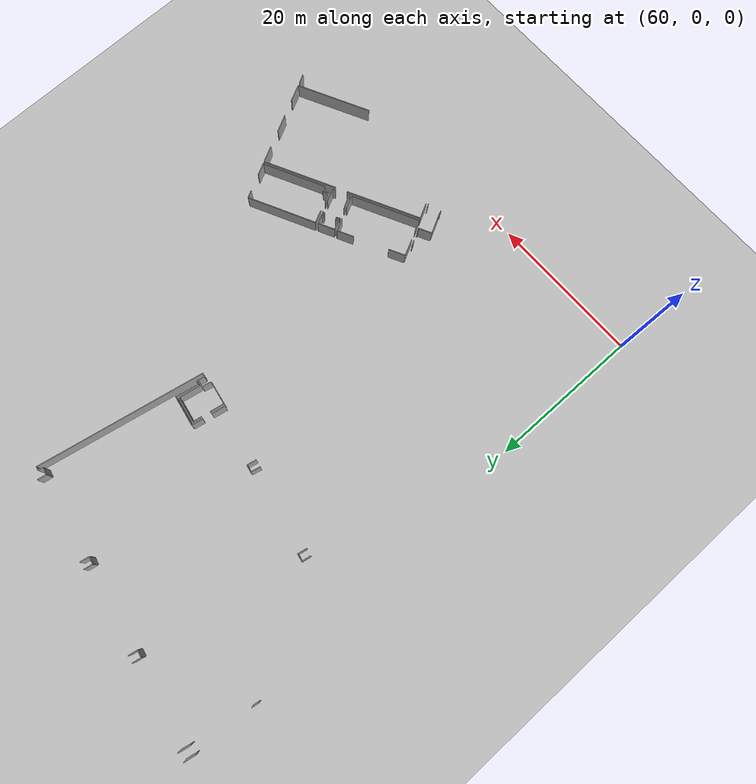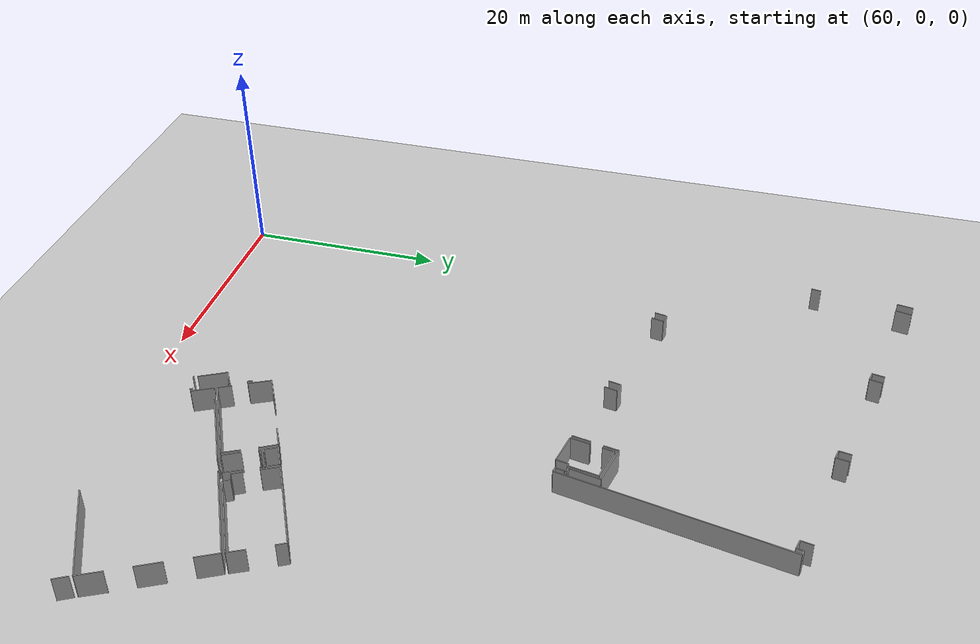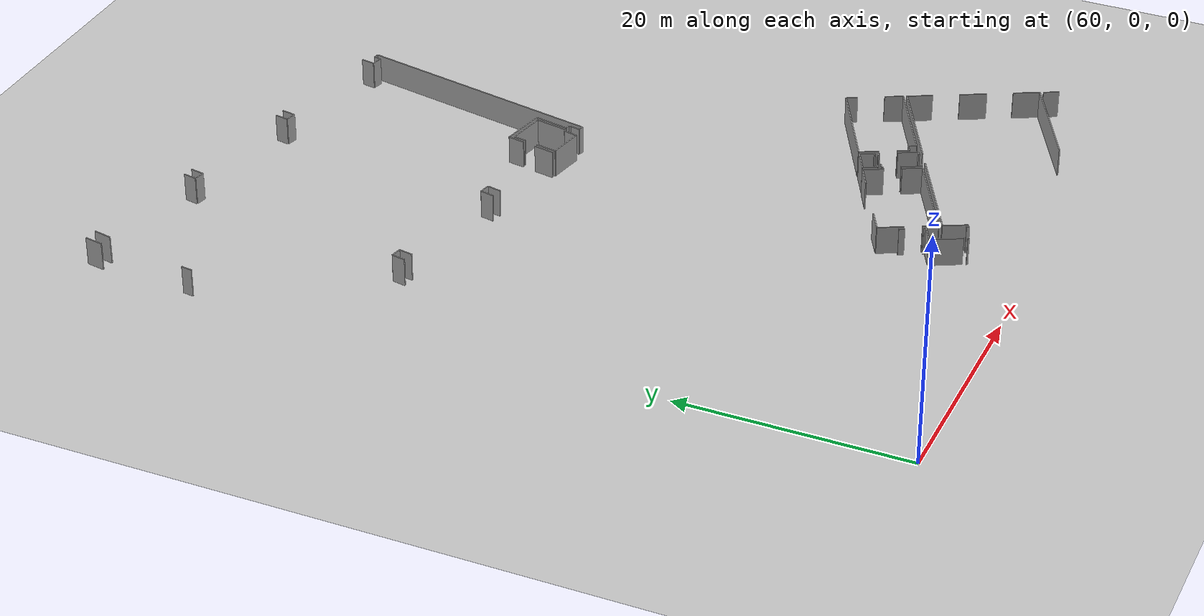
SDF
<sdf version="1.6">
 <world name="default">
  <model name="ground_plane">
   <static>1</static>
   <link name="link">
    <collision name="collision">
     <geometry><plane><normal>0 0 1</normal><size>100 100</size></plane></geometry>
     <surface><friction><ode><mu>100</mu><mu2>50</mu2></ode></friction></surface>
    </collision>
    <visual name="visual">
     <cast_shadows>0</cast_shadows>
     <geometry><plane><normal>0 0 1</normal><size>100 100</size></plane></geometry>
     <material>
      <script><uri>file://media/materials/scripts/gazebo.material</uri><name>Gazebo/Grey</name></script>
     </material>
    </visual>
   </link>
  </model>
  <model name="0510045926_A-40">
   <static>1</static>
   <link name="Wall_0">
    <collision name="Wall_0_Collision">
     <geometry><box><size>2.24683478644 0.1 2.5</size></box></geometry>
     <pose>1.12341739322 0 1.25 0 0 0</pose>
    </collision>
    <visual name="Wall_0_Visual">
     <pose>1.12341739322 0 1.25 0 0 0</pose>
     <geometry><box><size>2.24683478644 0.1 2.5</size></box></geometry>
     <material>
      <script><uri>file://media/materials/scripts/gazebo.material</uri><name>Gazebo/Grey</name></script>
      <ambient>1 1 1 1</ambient>
     </material>
    </visual>
    <pose>228.549551665 -84.0987162321 0 0 0 0.472186205042</pose>
   </link>
   <link name="Wall_1">
    <collision name="Wall_1_Collision">
     <geometry><box><size>1.26755915564 0.1 2.5</size></box></geometry>
     <pose>0.633779577821 0 1.25 0 0 0</pose>
    </collision>
    <visual name="Wall_1_Visual">
     <pose>0.633779577821 0 1.25 0 0 0</pose>
     <geometry><box><size>1.26755915564 0.1 2.5</size></box></geometry>
     <material>
      <script><uri>file://media/materials/scripts/gazebo.material</uri><name>Gazebo/Grey</name></script>
      <ambient>1 1 1 1</ambient>
     </material>
    </visual>
    <pose>230.550528928 -83.0767785865 0 0 0 -1.08762414792</pose>
   </link>
   <link name="Wall_2">
    <collision name="Wall_2_Collision">
     <geometry><box><size>0.303872854573 0.1 2.5</size></box></geometry>
     <pose>0.151936427287 0 1.25 0 0 0</pose>
    </collision>
    <visual name="Wall_2_Visual">
     <pose>0.151936427287 0 1.25 0 0 0</pose>
     <geometry><box><size>0.303872854573 0.1 2.5</size></box></geometry>
     <material>
      <script><uri>file://media/materials/scripts/gazebo.material</uri><name>Gazebo/Grey</name></script>
      <ambient>1 1 1 1</ambient>
     </material>
    </visual>
    <pose>231.139424938 -84.199234689 0 0 0 -2.5656376599</pose>
   </link>
   <link name="Wall_3">
    <collision name="Wall_3_Collision">
     <geometry><box><size>0.41561760121 0.1 2.5</size></box></geometry>
     <pose>0.207808800605 0 1.25 0 0 0</pose>
    </collision>
    <visual name="Wall_3_Visual">
     <pose>0.207808800605 0 1.25 0 0 0</pose>
     <geometry><box><size>0.41561760121 0.1 2.5</size></box></geometry>
     <material>
      <script><uri>file://media/materials/scripts/gazebo.material</uri><name>Gazebo/Grey</name></script>
      <ambient>1 1 1 1</ambient>
     </material>
    </visual>
    <pose>229.499400316 -85.0498340557 0 0 0 -2.66647327252</pose>
   </link>
   <link name="Wall_4">
    <collision name="Wall_4_Collision">
     <geometry><box><size>1.2802877083 0.1 2.5</size></box></geometry>
     <pose>0.640143854149 0 1.25 0 0 0</pose>
    </collision>
    <visual name="Wall_4_Visual">
     <pose>0.640143854149 0 1.25 0 0 0</pose>
     <geometry><box><size>1.2802877083 0.1 2.5</size></box></geometry>
     <material>
      <script><uri>file://media/materials/scripts/gazebo.material</uri><name>Gazebo/Grey</name></script>
      <ambient>1 1 1 1</ambient>
     </material>
    </visual>
    <pose>229.129817303 -85.2399560866 0 0 0 2.04118261727</pose>
   </link>
   <link name="Wall_5">
    <collision name="Wall_5_Collision">
     <geometry><box><size>9.20374841256 0.1 2.5</size></box></geometry>
     <pose>4.60187420628 0 1.25 0 0 0</pose>
    </collision>
    <visual name="Wall_5_Visual">
     <pose>4.60187420628 0 1.25 0 0 0</pose>
     <geometry><box><size>9.20374841256 0.1 2.5</size></box></geometry>
     <material>
      <script><uri>file://media/materials/scripts/gazebo.material</uri><name>Gazebo/Grey</name></script>
      <ambient>1 1 1 1</ambient>
     </material>
    </visual>
    <pose>230.850561292 -82.9031557973 0 0 0 0.466225399707</pose>
   </link>
   <link name="Wall_6">
    <collision name="Wall_6_Collision">
     <geometry><box><size>1.00990088383 0.1 2.5</size></box></geometry>
     <pose>0.504950441916 0 1.25 0 0 0</pose>
    </collision>
    <visual name="Wall_6_Visual">
     <pose>0.504950441916 0 1.25 0 0 0</pose>
     <geometry><box><size>1.00990088383 0.1 2.5</size></box></geometry>
     <material>
      <script><uri>file://media/materials/scripts/gazebo.material</uri><name>Gazebo/Grey</name></script>
      <ambient>1 1 1 1</ambient>
     </material>
    </visual>
    <pose>239.072006498 -78.76590749 0 0 0 -1.07578249008</pose>
   </link>
   <link name="Wall_7">
    <collision name="Wall_7_Collision">
     <geometry><box><size>1.66262526959 0.1 2.5</size></box></geometry>
     <pose>0.831312634797 0 1.25 0 0 0</pose>
    </collision>
    <visual name="Wall_7_Visual">
     <pose>0.831312634797 0 1.25 0 0 0</pose>
     <geometry><box><size>1.66262526959 0.1 2.5</size></box></geometry>
     <material>
      <script><uri>file://media/materials/scripts/gazebo.material</uri><name>Gazebo/Grey</name></script>
      <ambient>1 1 1 1</ambient>
     </material>
    </visual>
    <pose>240.63055025 -81.7530317357 0 0 0 -1.11383986469</pose>
   </link>
   <link name="Wall_8">
    <collision name="Wall_8_Collision">
     <geometry><box><size>8.47727137903 0.1 2.5</size></box></geometry>
     <pose>4.23863568951 0 1.25 0 0 0</pose>
    </collision>
    <visual name="Wall_8_Visual">
     <pose>4.23863568951 0 1.25 0 0 0</pose>
     <geometry><box><size>8.47727137903 0.1 2.5</size></box></geometry>
     <material>
      <script><uri>file://media/materials/scripts/gazebo.material</uri><name>Gazebo/Grey</name></script>
      <ambient>1 1 1 1</ambient>
     </material>
    </visual>
    <pose>241.364131918 -83.2450708516 0 0 0 -2.67387420188</pose>
   </link>
   <link name="Wall_9">
    <collision name="Wall_9_Collision">
     <geometry><box><size>0.711284816569 0.1 2.5</size></box></geometry>
     <pose>0.355642408284 0 1.25 0 0 0</pose>
    </collision>
    <visual name="Wall_9_Visual">
     <pose>0.355642408284 0 1.25 0 0 0</pose>
     <geometry><box><size>0.711284816569 0.1 2.5</size></box></geometry>
     <material>
      <script><uri>file://media/materials/scripts/gazebo.material</uri><name>Gazebo/Grey</name></script>
      <ambient>1 1 1 1</ambient>
     </material>
    </visual>
    <pose>233.797325854 -87.0670567257 0 0 0 2.07754821075</pose>
   </link>
   <link name="Wall_10">
    <collision name="Wall_10_Collision">
     <geometry><box><size>0.712422382929 0.1 2.5</size></box></geometry>
     <pose>0.356211191465 0 1.25 0 0 0</pose>
    </collision>
    <visual name="Wall_10_Visual">
     <pose>0.356211191465 0 1.25 0 0 0</pose>
     <geometry><box><size>0.712422382929 0.1 2.5</size></box></geometry>
     <material>
      <script><uri>file://media/materials/scripts/gazebo.material</uri><name>Gazebo/Grey</name></script>
      <ambient>1 1 1 1</ambient>
     </material>
    </visual>
    <pose>233.452110951 -86.445162232 0 0 0 -2.70216727472</pose>
   </link>
   <link name="Wall_11">
    <collision name="Wall_11_Collision">
     <geometry><box><size>1.04683681426 0.1 2.5</size></box></geometry>
     <pose>0.523418407128 0 1.25 0 0 0</pose>
    </collision>
    <visual name="Wall_11_Visual">
     <pose>0.523418407128 0 1.25 0 0 0</pose>
     <geometry><box><size>1.04683681426 0.1 2.5</size></box></geometry>
     <material>
      <script><uri>file://media/materials/scripts/gazebo.material</uri><name>Gazebo/Grey</name></script>
      <ambient>1 1 1 1</ambient>
     </material>
    </visual>
    <pose>232.807371354 -86.7482406097 0 0 0 2.07544547198</pose>
   </link>
   <link name="Wall_12">
    <collision name="Wall_12_Collision">
     <geometry><box><size>1.74859254883 0.1 2.5</size></box></geometry>
     <pose>0.874296274414 0 1.25 0 0 0</pose>
    </collision>
    <visual name="Wall_12_Visual">
     <pose>0.874296274414 0 1.25 0 0 0</pose>
     <geometry><box><size>1.74859254883 0.1 2.5</size></box></geometry>
     <material>
      <script><uri>file://media/materials/scripts/gazebo.material</uri><name>Gazebo/Grey</name></script>
      <ambient>1 1 1 1</ambient>
     </material>
    </visual>
    <pose>231.618410615 -84.4741374387 0 0 0 2.02541996469</pose>
   </link>
   <link name="Wall_13">
    <collision name="Wall_13_Collision">
     <geometry><box><size>2.20443619592 0.1 2.5</size></box></geometry>
     <pose>1.10221809796 0 1.25 0 0 0</pose>
    </collision>
    <visual name="Wall_13_Visual">
     <pose>1.10221809796 0 1.25 0 0 0</pose>
     <geometry><box><size>2.20443619592 0.1 2.5</size></box></geometry>
     <material>
      <script><uri>file://media/materials/scripts/gazebo.material</uri><name>Gazebo/Grey</name></script>
      <ambient>1 1 1 1</ambient>
     </material>
    </visual>
    <pose>220.097878578 -88.3831885419 0 0 0 0.478787823014</pose>
   </link>
   <link name="Wall_14">
    <collision name="Wall_14_Collision">
     <geometry><box><size>2.22803820862 0.1 2.5</size></box></geometry>
     <pose>1.11401910431 0 1.25 0 0 0</pose>
    </collision>
    <visual name="Wall_14_Visual">
     <pose>1.11401910431 0 1.25 0 0 0</pose>
     <geometry><box><size>2.22803820862 0.1 2.5</size></box></geometry>
     <material>
      <script><uri>file://media/materials/scripts/gazebo.material</uri><name>Gazebo/Grey</name></script>
      <ambient>1 1 1 1</ambient>
     </material>
    </visual>
    <pose>226.234073472 -85.2206646656 0 0 0 0.467417907536</pose>
   </link>
   <link name="Wall_15">
    <collision name="Wall_15_Collision">
     <geometry><box><size>1.78536736294 0.1 2.5</size></box></geometry>
     <pose>0.89268368147 0 1.25 0 0 0</pose>
    </collision>
    <visual name="Wall_15_Visual">
     <pose>0.89268368147 0 1.25 0 0 0</pose>
     <geometry><box><size>1.78536736294 0.1 2.5</size></box></geometry>
     <material>
      <script><uri>file://media/materials/scripts/gazebo.material</uri><name>Gazebo/Grey</name></script>
      <ambient>1 1 1 1</ambient>
     </material>
    </visual>
    <pose>228.223120514 -84.2167492686 0 0 0 -1.08050447128</pose>
   </link>
   <link name="Wall_16">
    <collision name="Wall_16_Collision">
     <geometry><box><size>1.73853767877 0.1 2.5</size></box></geometry>
     <pose>0.869268839387 0 1.25 0 0 0</pose>
    </collision>
    <visual name="Wall_16_Visual">
     <pose>0.869268839387 0 1.25 0 0 0</pose>
     <geometry><box><size>1.73853767877 0.1 2.5</size></box></geometry>
     <material>
      <script><uri>file://media/materials/scripts/gazebo.material</uri><name>Gazebo/Grey</name></script>
      <ambient>1 1 1 1</ambient>
     </material>
    </visual>
    <pose>229.759072996 -87.1817899139 0 0 0 -1.10976053033</pose>
   </link>
   <link name="Wall_17">
    <collision name="Wall_17_Collision">
     <geometry><box><size>9.12243061222 0.1 2.5</size></box></geometry>
     <pose>4.56121530611 0 1.25 0 0 0</pose>
    </collision>
    <visual name="Wall_17_Visual">
     <pose>4.56121530611 0 1.25 0 0 0</pose>
     <geometry><box><size>9.12243061222 0.1 2.5</size></box></geometry>
     <material>
      <script><uri>file://media/materials/scripts/gazebo.material</uri><name>Gazebo/Grey</name></script>
      <ambient>1 1 1 1</ambient>
     </material>
    </visual>
    <pose>230.532506679 -88.7388106585 0 0 0 -2.66940845413</pose>
   </link>
   <link name="Wall_18">
    <collision name="Wall_18_Collision">
     <geometry><box><size>1.32763301571 0.1 2.5</size></box></geometry>
     <pose>0.663816507854 0 1.25 0 0 0</pose>
    </collision>
    <visual name="Wall_18_Visual">
     <pose>0.663816507854 0 1.25 0 0 0</pose>
     <geometry><box><size>1.32763301571 0.1 2.5</size></box></geometry>
     <material>
      <script><uri>file://media/materials/scripts/gazebo.material</uri><name>Gazebo/Grey</name></script>
      <ambient>1 1 1 1</ambient>
     </material>
    </visual>
    <pose>222.408280081 -92.8879891867 0 0 0 2.05830187817</pose>
   </link>
   <link name="Wall_19">
    <collision name="Wall_19_Collision">
     <geometry><box><size>2.21929779958 0.1 2.5</size></box></geometry>
     <pose>1.10964889979 0 1.25 0 0 0</pose>
    </collision>
    <visual name="Wall_19_Visual">
     <pose>1.10964889979 0 1.25 0 0 0</pose>
     <geometry><box><size>2.21929779958 0.1 2.5</size></box></geometry>
     <material>
      <script><uri>file://media/materials/scripts/gazebo.material</uri><name>Gazebo/Grey</name></script>
      <ambient>1 1 1 1</ambient>
     </material>
    </visual>
    <pose>221.082756389 -90.3719817493 0 0 0 2.03060763748</pose>
   </link>
   <link name="Wall_20">
    <collision name="Wall_20_Collision">
     <geometry><box><size>0.472593871932 0.1 2.5</size></box></geometry>
     <pose>0.236296935966 0 1.25 0 0 0</pose>
    </collision>
    <visual name="Wall_20_Visual">
     <pose>0.236296935966 0 1.25 0 0 0</pose>
     <geometry><box><size>0.472593871932 0.1 2.5</size></box></geometry>
     <material>
      <script><uri>file://media/materials/scripts/gazebo.material</uri><name>Gazebo/Grey</name></script>
      <ambient>1 1 1 1</ambient>
     </material>
    </visual>
    <pose>229.282879498 -85.5333887539 0 0 0 0.546130565666</pose>
   </link>
   <link name="Wall_21">
    <collision name="Wall_21_Collision">
     <geometry><box><size>0.301306668579 0.1 2.5</size></box></geometry>
     <pose>0.15065333429 0 1.25 0 0 0</pose>
    </collision>
    <visual name="Wall_21_Visual">
     <pose>0.15065333429 0 1.25 0 0 0</pose>
     <geometry><box><size>0.301306668579 0.1 2.5</size></box></geometry>
     <material>
      <script><uri>file://media/materials/scripts/gazebo.material</uri><name>Gazebo/Grey</name></script>
      <ambient>1 1 1 1</ambient>
     </material>
    </visual>
    <pose>231.025707088 -84.6112080618 0 0 0 0.449707291291</pose>
   </link>
   <link name="Wall_22">
    <collision name="Wall_22_Collision">
     <geometry><box><size>0.1653094053 0.1 2.5</size></box></geometry>
     <pose>0.0826547026498 0 1.25 0 0 0</pose>
    </collision>
    <visual name="Wall_22_Visual">
     <pose>0.0826547026498 0 1.25 0 0 0</pose>
     <geometry><box><size>0.1653094053 0.1 2.5</size></box></geometry>
     <material>
      <script><uri>file://media/materials/scripts/gazebo.material</uri><name>Gazebo/Grey</name></script>
      <ambient>1 1 1 1</ambient>
     </material>
    </visual>
    <pose>231.297056155 -84.4802294664 0 0 0 -1.18344660057</pose>
   </link>
   <link name="Wall_23">
    <collision name="Wall_23_Collision">
     <geometry><box><size>1.73392004608 0.1 2.5</size></box></geometry>
     <pose>0.866960023042 0 1.25 0 0 0</pose>
    </collision>
    <visual name="Wall_23_Visual">
     <pose>0.866960023042 0 1.25 0 0 0</pose>
     <geometry><box><size>1.73392004608 0.1 2.5</size></box></geometry>
     <material>
      <script><uri>file://media/materials/scripts/gazebo.material</uri><name>Gazebo/Grey</name></script>
      <ambient>1 1 1 1</ambient>
     </material>
    </visual>
    <pose>232.063128637 -85.9798836169 0 0 0 -1.1141539718</pose>
   </link>
   <link name="Wall_24">
    <collision name="Wall_24_Collision">
     <geometry><box><size>0.390977133344 0.1 2.5</size></box></geometry>
     <pose>0.195488566672 0 1.25 0 0 0</pose>
    </collision>
    <visual name="Wall_24_Visual">
     <pose>0.195488566672 0 1.25 0 0 0</pose>
     <geometry><box><size>0.390977133344 0.1 2.5</size></box></geometry>
     <material>
      <script><uri>file://media/materials/scripts/gazebo.material</uri><name>Gazebo/Grey</name></script>
      <ambient>1 1 1 1</ambient>
     </material>
    </visual>
    <pose>232.827678112 -87.536142858 0 0 0 -2.5840256137</pose>
   </link>
   <link name="Wall_25">
    <collision name="Wall_25_Collision">
     <geometry><box><size>0.351416406892 0.1 2.5</size></box></geometry>
     <pose>0.175708203446 0 1.25 0 0 0</pose>
    </collision>
    <visual name="Wall_25_Visual">
     <pose>0.175708203446 0 1.25 0 0 0</pose>
     <geometry><box><size>0.351416406892 0.1 2.5</size></box></geometry>
     <material>
      <script><uri>file://media/materials/scripts/gazebo.material</uri><name>Gazebo/Grey</name></script>
      <ambient>1 1 1 1</ambient>
     </material>
    </visual>
    <pose>231.14348629 -88.4469009982 0 0 0 -2.65694651598</pose>
   </link>
   <link name="Wall_26">
    <collision name="Wall_26_Collision">
     <geometry><box><size>1.82038697518 0.1 2.5</size></box></geometry>
     <pose>0.910193487589 0 1.25 0 0 0</pose>
    </collision>
    <visual name="Wall_26_Visual">
     <pose>0.910193487589 0 1.25 0 0 0</pose>
     <geometry><box><size>1.82038697518 0.1 2.5</size></box></geometry>
     <material>
      <script><uri>file://media/materials/scripts/gazebo.material</uri><name>Gazebo/Grey</name></script>
      <ambient>1 1 1 1</ambient>
     </material>
    </visual>
    <pose>230.832539043 -88.6106242425 0 0 0 2.05053335433</pose>
   </link>
   <link name="Wall_27">
    <collision name="Wall_27_Collision">
     <geometry><box><size>0.117369839021 0.1 2.5</size></box></geometry>
     <pose>0.0586849195106 0 1.25 0 0 0</pose>
    </collision>
    <visual name="Wall_27_Visual">
     <pose>0.0586849195106 0 1.25 0 0 0</pose>
     <geometry><box><size>0.117369839021 0.1 2.5</size></box></geometry>
     <material>
      <script><uri>file://media/materials/scripts/gazebo.material</uri><name>Gazebo/Grey</name></script>
      <ambient>1 1 1 1</ambient>
     </material>
    </visual>
    <pose>229.318162492 -85.6453297627 0 0 0 1.87613248687</pose>
   </link>
   <link name="Wall_28">
    <collision name="Wall_28_Collision">
     <geometry><box><size>9.89260626272 0.1 2.5</size></box></geometry>
     <pose>4.94630313136 0 1.25 0 0 0</pose>
    </collision>
    <visual name="Wall_28_Visual">
     <pose>4.94630313136 0 1.25 0 0 0</pose>
     <geometry><box><size>9.89260626272 0.1 2.5</size></box></geometry>
     <material>
      <script><uri>file://media/materials/scripts/gazebo.material</uri><name>Gazebo/Grey</name></script>
      <ambient>1 1 1 1</ambient>
     </material>
    </visual>
    <pose>222.523013269 -93.1826910263 0 0 0 0.472644176076</pose>
   </link>
   <link name="Wall_29">
    <collision name="Wall_29_Collision">
     <geometry><box><size>9.86099682919 0.1 2.5</size></box></geometry>
     <pose>4.9304984146 0 1.25 0 0 0</pose>
    </collision>
    <visual name="Wall_29_Visual">
     <pose>4.9304984146 0 1.25 0 0 0</pose>
     <geometry><box><size>9.86099682919 0.1 2.5</size></box></geometry>
     <material>
      <script><uri>file://media/materials/scripts/gazebo.material</uri><name>Gazebo/Grey</name></script>
      <ambient>1 1 1 1</ambient>
     </material>
    </visual>
    <pose>232.710914248 -87.9793378727 0 0 0 0.468620745079</pose>
   </link>
   <link name="Wall_30">
    <collision name="Wall_30_Collision">
     <geometry><box><size>2.25003477005 0.1 2.5</size></box></geometry>
     <pose>1.12501738502 0 1.25 0 0 0</pose>
    </collision>
    <visual name="Wall_30_Visual">
     <pose>1.12501738502 0 1.25 0 0 0</pose>
     <geometry><box><size>2.25003477005 0.1 2.5</size></box></geometry>
     <material>
      <script><uri>file://media/materials/scripts/gazebo.material</uri><name>Gazebo/Grey</name></script>
      <ambient>1 1 1 1</ambient>
     </material>
    </visual>
    <pose>241.508817575 -83.5255579599 0 0 0 -1.09756273494</pose>
   </link>
   <link name="Wall_31">
    <collision name="Wall_31_Collision">
     <geometry><box><size>2.39791941209 0.1 2.5</size></box></geometry>
     <pose>1.19895970605 0 1.25 0 0 0</pose>
    </collision>
    <visual name="Wall_31_Visual">
     <pose>1.19895970605 0 1.25 0 0 0</pose>
     <geometry><box><size>2.39791941209 0.1 2.5</size></box></geometry>
     <material>
      <script><uri>file://media/materials/scripts/gazebo.material</uri><name>Gazebo/Grey</name></script>
      <ambient>1 1 1 1</ambient>
     </material>
    </visual>
    <pose>243.60041375 -87.6447840186 0 0 0 -1.09465055219</pose>
   </link>
   <link name="Wall_32">
    <collision name="Wall_32_Collision">
     <geometry><box><size>2.35959505449 0.1 2.5</size></box></geometry>
     <pose>1.17979752724 0 1.25 0 0 0</pose>
    </collision>
    <visual name="Wall_32_Visual">
     <pose>1.17979752724 0 1.25 0 0 0</pose>
     <geometry><box><size>2.35959505449 0.1 2.5</size></box></geometry>
     <material>
      <script><uri>file://media/materials/scripts/gazebo.material</uri><name>Gazebo/Grey</name></script>
      <ambient>1 1 1 1</ambient>
     </material>
    </visual>
    <pose>245.755468547 -91.8211228369 0 0 0 -1.10921741493</pose>
   </link>
   <link name="Wall_33">
    <collision name="Wall_33_Collision">
     <geometry><box><size>9.91970486618 0.1 2.5</size></box></geometry>
     <pose>4.95985243309 0 1.25 0 0 0</pose>
    </collision>
    <visual name="Wall_33_Visual">
     <pose>4.95985243309 0 1.25 0 0 0</pose>
     <geometry><box><size>9.91970486618 0.1 2.5</size></box></geometry>
     <material>
      <script><uri>file://media/materials/scripts/gazebo.material</uri><name>Gazebo/Grey</name></script>
      <ambient>1 1 1 1</ambient>
     </material>
    </visual>
    <pose>246.806343324 -93.933787274 0 0 0 -2.67261225008</pose>
   </link>
   <link name="Wall_37">
    <collision name="Wall_37_Collision">
     <geometry><box><size>2.14085640761 0.1 2.5</size></box></geometry>
     <pose>1.07042820381 0 1.25 0 0 0</pose>
    </collision>
    <visual name="Wall_37_Visual">
     <pose>1.07042820381 0 1.25 0 0 0</pose>
     <geometry><box><size>2.14085640761 0.1 2.5</size></box></geometry>
     <material>
      <script><uri>file://media/materials/scripts/gazebo.material</uri><name>Gazebo/Grey</name></script>
      <ambient>1 1 1 1</ambient>
     </material>
    </visual>
    <pose>223.487838155 -95.0938108806 0 0 0 2.03831474737</pose>
   </link>
   <link name="Wall_39">
    <collision name="Wall_39_Collision">
     <geometry><box><size>1.39832221505 0.1 2.5</size></box></geometry>
     <pose>0.699161107523 0 1.25 0 0 0</pose>
    </collision>
    <visual name="Wall_39_Visual">
     <pose>0.699161107523 0 1.25 0 0 0</pose>
     <geometry><box><size>1.39832221505 0.1 2.5</size></box></geometry>
     <material>
      <script><uri>file://media/materials/scripts/gazebo.material</uri><name>Gazebo/Grey</name></script>
      <ambient>1 1 1 1</ambient>
     </material>
    </visual>
    <pose>246.933260567 -94.2056440098 0 0 0 -1.07101498001</pose>
   </link>
   <link name="Wall_151">
    <collision name="Wall_151_Collision">
     <geometry><box><size>0.509039164248 0.1 2.5</size></box></geometry>
     <pose>0.254519582124 0 1.25 0 0 0</pose>
    </collision>
    <visual name="Wall_151_Visual">
     <pose>0.254519582124 0 1.25 0 0 0</pose>
     <geometry><box><size>0.509039164248 0.1 2.5</size></box></geometry>
     <material>
      <script><uri>file://media/materials/scripts/gazebo.material</uri><name>Gazebo/Grey</name></script>
      <ambient>1 1 1 1</ambient>
     </material>
    </visual>
    <pose>220.593363497 -90.1021556894 0 0 0 -1.09755935964</pose>
   </link>
   <link name="Wall_152">
    <collision name="Wall_152_Collision">
     <geometry><box><size>0.201884606875 0.1 2.5</size></box></geometry>
     <pose>0.100942303437 0 1.25 0 0 0</pose>
    </collision>
    <visual name="Wall_152_Visual">
     <pose>0.100942303437 0 1.25 0 0 0</pose>
     <geometry><box><size>0.201884606875 0.1 2.5</size></box></geometry>
     <material>
      <script><uri>file://media/materials/scripts/gazebo.material</uri><name>Gazebo/Grey</name></script>
      <ambient>1 1 1 1</ambient>
     </material>
    </visual>
    <pose>221.541942976 -91.9127570867 0 0 0 -1.15946579838</pose>
   </link>
   <link name="Wall_153">
    <collision name="Wall_153_Collision">
     <geometry><box><size>1.75645888475 0.1 2.5</size></box></geometry>
     <pose>0.878229442377 0 1.25 0 0 0</pose>
    </collision>
    <visual name="Wall_153_Visual">
     <pose>0.878229442377 0 1.25 0 0 0</pose>
     <geometry><box><size>1.75645888475 0.1 2.5</size></box></geometry>
     <material>
      <script><uri>file://media/materials/scripts/gazebo.material</uri><name>Gazebo/Grey</name></script>
      <ambient>1 1 1 1</ambient>
     </material>
    </visual>
    <pose>221.622662343 -92.0978024279 0 0 0 -2.66702252137</pose>
   </link>
   <link name="Wall_154">
    <collision name="Wall_154_Collision">
     <geometry><box><size>2.826500255 0.1 2.5</size></box></geometry>
     <pose>1.4132501275 0 1.25 0 0 0</pose>
    </collision>
    <visual name="Wall_154_Visual">
     <pose>1.4132501275 0 1.25 0 0 0</pose>
     <geometry><box><size>2.826500255 0.1 2.5</size></box></geometry>
     <material>
      <script><uri>file://media/materials/scripts/gazebo.material</uri><name>Gazebo/Grey</name></script>
      <ambient>1 1 1 1</ambient>
     </material>
    </visual>
    <pose>220.060311074 -92.9004270765 0 0 0 -1.09140451753</pose>
   </link>
   <link name="Wall_222">
    <collision name="Wall_222_Collision">
     <geometry><box><size>0.139173771172 0.1 2.5</size></box></geometry>
     <pose>0.0695868855861 0 1.25 0 0 0</pose>
    </collision>
    <visual name="Wall_222_Visual">
     <pose>0.0695868855861 0 1.25 0 0 0</pose>
     <geometry><box><size>0.139173771172 0.1 2.5</size></box></geometry>
     <material>
      <script><uri>file://media/materials/scripts/gazebo.material</uri><name>Gazebo/Grey</name></script>
      <ambient>1 1 1 1</ambient>
     </material>
    </visual>
    <pose>221.458939099 -95.7088518432 0 0 0 -1.10959569497</pose>
   </link>
   <link name="Wall_224">
    <collision name="Wall_224_Collision">
     <geometry><box><size>0.274782251484 0.1 2.5</size></box></geometry>
     <pose>0.137391125742 0 1.25 0 0 0</pose>
    </collision>
    <visual name="Wall_224_Visual">
     <pose>0.137391125742 0 1.25 0 0 0</pose>
     <geometry><box><size>0.274782251484 0.1 2.5</size></box></geometry>
     <material>
      <script><uri>file://media/materials/scripts/gazebo.material</uri><name>Gazebo/Grey</name></script>
      <ambient>1 1 1 1</ambient>
     </material>
    </visual>
    <pose>223.106578755 -95.0514205212 0 0 0 -0.989967568922</pose>
   </link>
   <link name="Wall_427">
    <collision name="Wall_427_Collision">
     <geometry><box><size>1.61870732148 0.1 2.5</size></box></geometry>
     <pose>0.809353660738 0 1.25 0 0 0</pose>
    </collision>
    <visual name="Wall_427_Visual">
     <pose>0.809353660738 0 1.25 0 0 0</pose>
     <geometry><box><size>1.61870732148 0.1 2.5</size></box></geometry>
     <material>
      <script><uri>file://media/materials/scripts/gazebo.material</uri><name>Gazebo/Grey</name></script>
      <ambient>1 1 1 1</ambient>
     </material>
    </visual>
    <pose>192.716244773 -30.1753869389 0 0 0 -1.74272517307</pose>
   </link>
   <link name="Wall_498">
    <collision name="Wall_498_Collision">
     <geometry><box><size>1.63759802182 0.1 2.5</size></box></geometry>
     <pose>0.818799010909 0 1.25 0 0 0</pose>
    </collision>
    <visual name="Wall_498_Visual">
     <pose>0.818799010909 0 1.25 0 0 0</pose>
     <geometry><box><size>1.63759802182 0.1 2.5</size></box></geometry>
     <material>
      <script><uri>file://media/materials/scripts/gazebo.material</uri><name>Gazebo/Grey</name></script>
      <ambient>1 1 1 1</ambient>
     </material>
    </visual>
    <pose>193.563290456 -31.9062843073 0 0 0 1.36552739263</pose>
   </link>
   <link name="Wall_499">
    <collision name="Wall_499_Collision">
     <geometry><box><size>1.19399838617 0.1 2.5</size></box></geometry>
     <pose>0.596999193087 0 1.25 0 0 0</pose>
    </collision>
    <visual name="Wall_499_Visual">
     <pose>0.596999193087 0 1.25 0 0 0</pose>
     <geometry><box><size>1.19399838617 0.1 2.5</size></box></geometry>
     <material>
      <script><uri>file://media/materials/scripts/gazebo.material</uri><name>Gazebo/Grey</name></script>
      <ambient>1 1 1 1</ambient>
     </material>
    </visual>
    <pose>204.631743272 -32.4540591307 0 0 0 -1.76764988128</pose>
   </link>
   <link name="Wall_500">
    <collision name="Wall_500_Collision">
     <geometry><box><size>0.943754063298 0.1 2.5</size></box></geometry>
     <pose>0.471877031649 0 1.25 0 0 0</pose>
    </collision>
    <visual name="Wall_500_Visual">
     <pose>0.471877031649 0 1.25 0 0 0</pose>
     <geometry><box><size>0.943754063298 0.1 2.5</size></box></geometry>
     <material>
      <script><uri>file://media/materials/scripts/gazebo.material</uri><name>Gazebo/Grey</name></script>
      <ambient>1 1 1 1</ambient>
     </material>
    </visual>
    <pose>204.398215544 -33.6249976203 0 0 0 -0.215489074452</pose>
   </link>
   <link name="Wall_501">
    <collision name="Wall_501_Collision">
     <geometry><box><size>1.23691055697 0.1 2.5</size></box></geometry>
     <pose>0.618455278487 0 1.25 0 0 0</pose>
    </collision>
    <visual name="Wall_501_Visual">
     <pose>0.618455278487 0 1.25 0 0 0</pose>
     <geometry><box><size>1.23691055697 0.1 2.5</size></box></geometry>
     <material>
      <script><uri>file://media/materials/scripts/gazebo.material</uri><name>Gazebo/Grey</name></script>
      <ambient>1 1 1 1</ambient>
     </material>
    </visual>
    <pose>205.320142401 -33.8267960376 0 0 0 1.37207263958</pose>
   </link>
   <link name="Wall_502">
    <collision name="Wall_502_Collision">
     <geometry><box><size>1.19422244725 0.1 2.5</size></box></geometry>
     <pose>0.597111223623 0 1.25 0 0 0</pose>
    </collision>
    <visual name="Wall_502_Visual">
     <pose>0.597111223623 0 1.25 0 0 0</pose>
     <geometry><box><size>1.19422244725 0.1 2.5</size></box></geometry>
     <material>
      <script><uri>file://media/materials/scripts/gazebo.material</uri><name>Gazebo/Grey</name></script>
      <ambient>1 1 1 1</ambient>
     </material>
    </visual>
    <pose>216.370826802 -34.7337466605 0 0 0 -1.74317834068</pose>
   </link>
   <link name="Wall_503">
    <collision name="Wall_503_Collision">
     <geometry><box><size>0.961561825474 0.1 2.5</size></box></geometry>
     <pose>0.480780912737 0 1.25 0 0 0</pose>
    </collision>
    <visual name="Wall_503_Visual">
     <pose>0.480780912737 0 1.25 0 0 0</pose>
     <geometry><box><size>0.961561825474 0.1 2.5</size></box></geometry>
     <material>
      <script><uri>file://media/materials/scripts/gazebo.material</uri><name>Gazebo/Grey</name></script>
      <ambient>1 1 1 1</ambient>
     </material>
    </visual>
    <pose>216.165982371 -35.9102695088 0 0 0 -0.229291917681</pose>
   </link>
   <link name="Wall_504">
    <collision name="Wall_504_Collision">
     <geometry><box><size>1.2536053486 0.1 2.5</size></box></geometry>
     <pose>0.6268026743 0 1.25 0 0 0</pose>
    </collision>
    <visual name="Wall_504_Visual">
     <pose>0.6268026743 0 1.25 0 0 0</pose>
     <geometry><box><size>1.2536053486 0.1 2.5</size></box></geometry>
     <material>
      <script><uri>file://media/materials/scripts/gazebo.material</uri><name>Gazebo/Grey</name></script>
      <ambient>1 1 1 1</ambient>
     </material>
    </visual>
    <pose>217.102377795 -36.1288210023 0 0 0 1.39206568947</pose>
   </link>
   <link name="Wall_505">
    <collision name="Wall_505_Collision">
     <geometry><box><size>1.21485347347 0.1 2.5</size></box></geometry>
     <pose>0.607426736736 0 1.25 0 0 0</pose>
    </collision>
    <visual name="Wall_505_Visual">
     <pose>0.607426736736 0 1.25 0 0 0</pose>
     <geometry><box><size>1.21485347347 0.1 2.5</size></box></geometry>
     <material>
      <script><uri>file://media/materials/scripts/gazebo.material</uri><name>Gazebo/Grey</name></script>
      <ambient>1 1 1 1</ambient>
     </material>
    </visual>
    <pose>228.161184899 -37.0108958454 0 0 0 -1.7480708269</pose>
   </link>
   <link name="Wall_506">
    <collision name="Wall_506_Collision">
     <geometry><box><size>0.93611082264 0.1 2.5</size></box></geometry>
     <pose>0.46805541132 0 1.25 0 0 0</pose>
    </collision>
    <visual name="Wall_506_Visual">
     <pose>0.46805541132 0 1.25 0 0 0</pose>
     <geometry><box><size>0.93611082264 0.1 2.5</size></box></geometry>
     <material>
      <script><uri>file://media/materials/scripts/gazebo.material</uri><name>Gazebo/Grey</name></script>
      <ambient>1 1 1 1</ambient>
     </material>
    </visual>
    <pose>227.946948592 -38.2067101147 0 0 0 -0.236757868382</pose>
   </link>
   <link name="Wall_507">
    <collision name="Wall_507_Collision">
     <geometry><box><size>0.681718769779 0.1 2.5</size></box></geometry>
     <pose>0.34085938489 0 1.25 0 0 0</pose>
    </collision>
    <visual name="Wall_507_Visual">
     <pose>0.34085938489 0 1.25 0 0 0</pose>
     <geometry><box><size>0.681718769779 0.1 2.5</size></box></geometry>
     <material>
      <script><uri>file://media/materials/scripts/gazebo.material</uri><name>Gazebo/Grey</name></script>
      <ambient>1 1 1 1</ambient>
     </material>
    </visual>
    <pose>228.856945229 -38.4262769461 0 0 0 1.31019393505</pose>
   </link>
   <link name="Wall_508">
    <collision name="Wall_508_Collision">
     <geometry><box><size>0.444250239125 0.1 2.5</size></box></geometry>
     <pose>0.222125119563 0 1.25 0 0 0</pose>
    </collision>
    <visual name="Wall_508_Visual">
     <pose>0.222125119563 0 1.25 0 0 0</pose>
     <geometry><box><size>0.444250239125 0.1 2.5</size></box></geometry>
     <material>
      <script><uri>file://media/materials/scripts/gazebo.material</uri><name>Gazebo/Grey</name></script>
      <ambient>1 1 1 1</ambient>
     </material>
    </visual>
    <pose>229.032598694 -37.7675764518 0 0 0 -0.227655378894</pose>
   </link>
   <link name="Wall_509">
    <collision name="Wall_509_Collision">
     <geometry><box><size>22.3319173222 0.1 2.5</size></box></geometry>
     <pose>11.1659586611 0 1.25 0 0 0</pose>
    </collision>
    <visual name="Wall_509_Visual">
     <pose>11.1659586611 0 1.25 0 0 0</pose>
     <geometry><box><size>22.3319173222 0.1 2.5</size></box></geometry>
     <material>
      <script><uri>file://media/materials/scripts/gazebo.material</uri><name>Gazebo/Grey</name></script>
      <ambient>1 1 1 1</ambient>
     </material>
    </visual>
    <pose>229.465386495 -37.8678410742 0 0 0 -1.76307152265</pose>
   </link>
   <link name="Wall_510">
    <collision name="Wall_510_Collision">
     <geometry><box><size>0.470925367791 0.1 2.5</size></box></geometry>
     <pose>0.235462683896 0 1.25 0 0 0</pose>
    </collision>
    <visual name="Wall_510_Visual">
     <pose>0.235462683896 0 1.25 0 0 0</pose>
     <geometry><box><size>0.470925367791 0.1 2.5</size></box></geometry>
     <material>
      <script><uri>file://media/materials/scripts/gazebo.material</uri><name>Gazebo/Grey</name></script>
      <ambient>1 1 1 1</ambient>
     </material>
    </visual>
    <pose>225.197921096 -59.7882258873 0 0 0 2.87765705659</pose>
   </link>
   <link name="Wall_511">
    <collision name="Wall_511_Collision">
     <geometry><box><size>0.846227876607 0.1 2.5</size></box></geometry>
     <pose>0.423113938303 0 1.25 0 0 0</pose>
    </collision>
    <visual name="Wall_511_Visual">
     <pose>0.423113938303 0 1.25 0 0 0</pose>
     <geometry><box><size>0.846227876607 0.1 2.5</size></box></geometry>
     <material>
      <script><uri>file://media/materials/scripts/gazebo.material</uri><name>Gazebo/Grey</name></script>
      <ambient>1 1 1 1</ambient>
     </material>
    </visual>
    <pose>224.743303529 -59.6653699955 0 0 0 1.37334193996</pose>
   </link>
   <link name="Wall_512">
    <collision name="Wall_512_Collision">
     <geometry><box><size>0.229262150976 0.1 2.5</size></box></geometry>
     <pose>0.114631075488 0 1.25 0 0 0</pose>
    </collision>
    <visual name="Wall_512_Visual">
     <pose>0.114631075488 0 1.25 0 0 0</pose>
     <geometry><box><size>0.229262150976 0.1 2.5</size></box></geometry>
     <material>
      <script><uri>file://media/materials/scripts/gazebo.material</uri><name>Gazebo/Grey</name></script>
      <ambient>1 1 1 1</ambient>
     </material>
    </visual>
    <pose>224.909311284 -58.8355850568 0 0 0 1.7929479054</pose>
   </link>
   <link name="Wall_513">
    <collision name="Wall_513_Collision">
     <geometry><box><size>0.360865251925 0.1 2.5</size></box></geometry>
     <pose>0.180432625962 0 1.25 0 0 0</pose>
    </collision>
    <visual name="Wall_513_Visual">
     <pose>0.180432625962 0 1.25 0 0 0</pose>
     <geometry><box><size>0.360865251925 0.1 2.5</size></box></geometry>
     <material>
      <script><uri>file://media/materials/scripts/gazebo.material</uri><name>Gazebo/Grey</name></script>
      <ambient>1 1 1 1</ambient>
     </material>
    </visual>
    <pose>224.858798221 -58.6119568735 0 0 0 2.94047245929</pose>
   </link>
   <link name="Wall_514">
    <collision name="Wall_514_Collision">
     <geometry><box><size>3.08358721187 0.1 2.5</size></box></geometry>
     <pose>1.54179360593 0 1.25 0 0 0</pose>
    </collision>
    <visual name="Wall_514_Visual">
     <pose>1.54179360593 0 1.25 0 0 0</pose>
     <geometry><box><size>3.08358721187 0.1 2.5</size></box></geometry>
     <material>
      <script><uri>file://media/materials/scripts/gazebo.material</uri><name>Gazebo/Grey</name></script>
      <ambient>1 1 1 1</ambient>
     </material>
    </visual>
    <pose>224.50520678 -58.5398678791 0 0 0 1.37293259463</pose>
   </link>
   <link name="Wall_515">
    <collision name="Wall_515_Collision">
     <geometry><box><size>4.03384319268 0.1 2.5</size></box></geometry>
     <pose>2.01692159634 0 1.25 0 0 0</pose>
    </collision>
    <visual name="Wall_515_Visual">
     <pose>2.01692159634 0 1.25 0 0 0</pose>
     <geometry><box><size>4.03384319268 0.1 2.5</size></box></geometry>
     <material>
      <script><uri>file://media/materials/scripts/gazebo.material</uri><name>Gazebo/Grey</name></script>
      <ambient>1 1 1 1</ambient>
     </material>
    </visual>
    <pose>225.111363535 -55.5164453018 0 0 0 2.95071310666</pose>
   </link>
   <link name="Wall_516">
    <collision name="Wall_516_Collision">
     <geometry><box><size>1.48089147866 0.1 2.5</size></box></geometry>
     <pose>0.740445739332 0 1.25 0 0 0</pose>
    </collision>
    <visual name="Wall_516_Visual">
     <pose>0.740445739332 0 1.25 0 0 0</pose>
     <geometry><box><size>1.48089147866 0.1 2.5</size></box></geometry>
     <material>
      <script><uri>file://media/materials/scripts/gazebo.material</uri><name>Gazebo/Grey</name></script>
      <ambient>1 1 1 1</ambient>
     </material>
    </visual>
    <pose>221.150784031 -54.7511343229 0 0 0 -1.74966863813</pose>
   </link>
   <link name="Wall_517">
    <collision name="Wall_517_Collision">
     <geometry><box><size>1.84346806588 0.1 2.5</size></box></geometry>
     <pose>0.921734032942 0 1.25 0 0 0</pose>
    </collision>
    <visual name="Wall_517_Visual">
     <pose>0.921734032942 0 1.25 0 0 0</pose>
     <geometry><box><size>1.84346806588 0.1 2.5</size></box></geometry>
     <material>
      <script><uri>file://media/materials/scripts/gazebo.material</uri><name>Gazebo/Grey</name></script>
      <ambient>1 1 1 1</ambient>
     </material>
    </visual>
    <pose>220.638038367 -57.399897197 0 0 0 -1.75090845683</pose>
   </link>
   <link name="Wall_518">
    <collision name="Wall_518_Collision">
     <geometry><box><size>1.25972133235 0.1 2.5</size></box></geometry>
     <pose>0.629860666176 0 1.25 0 0 0</pose>
    </collision>
    <visual name="Wall_518_Visual">
     <pose>0.629860666176 0 1.25 0 0 0</pose>
     <geometry><box><size>1.25972133235 0.1 2.5</size></box></geometry>
     <material>
      <script><uri>file://media/materials/scripts/gazebo.material</uri><name>Gazebo/Grey</name></script>
      <ambient>1 1 1 1</ambient>
     </material>
    </visual>
    <pose>212.873749072 -57.8037478662 0 0 0 1.36008297554</pose>
   </link>
   <link name="Wall_519">
    <collision name="Wall_519_Collision">
     <geometry><box><size>0.956896764504 0.1 2.5</size></box></geometry>
     <pose>0.478448382252 0 1.25 0 0 0</pose>
    </collision>
    <visual name="Wall_519_Visual">
     <pose>0.478448382252 0 1.25 0 0 0</pose>
     <geometry><box><size>0.956896764504 0.1 2.5</size></box></geometry>
     <material>
      <script><uri>file://media/materials/scripts/gazebo.material</uri><name>Gazebo/Grey</name></script>
      <ambient>1 1 1 1</ambient>
     </material>
    </visual>
    <pose>213.13722927 -56.5718890997 0 0 0 2.94076354153</pose>
   </link>
   <link name="Wall_520">
    <collision name="Wall_520_Collision">
     <geometry><box><size>1.23039826086 0.1 2.5</size></box></geometry>
     <pose>0.61519913043 0 1.25 0 0 0</pose>
    </collision>
    <visual name="Wall_520_Visual">
     <pose>0.61519913043 0 1.25 0 0 0</pose>
     <geometry><box><size>1.23039826086 0.1 2.5</size></box></geometry>
     <material>
      <script><uri>file://media/materials/scripts/gazebo.material</uri><name>Gazebo/Grey</name></script>
      <ambient>1 1 1 1</ambient>
     </material>
    </visual>
    <pose>212.199564674 -56.3810055653 0 0 0 -1.78154384867</pose>
   </link>
   <link name="Wall_521">
    <collision name="Wall_521_Collision">
     <geometry><box><size>1.22154533896 0.1 2.5</size></box></geometry>
     <pose>0.610772669482 0 1.25 0 0 0</pose>
    </collision>
    <visual name="Wall_521_Visual">
     <pose>0.610772669482 0 1.25 0 0 0</pose>
     <geometry><box><size>1.22154533896 0.1 2.5</size></box></geometry>
     <material>
      <script><uri>file://media/materials/scripts/gazebo.material</uri><name>Gazebo/Grey</name></script>
      <ambient>1 1 1 1</ambient>
     </material>
    </visual>
    <pose>201.146341928 -55.4816699771 0 0 0 1.37886163042</pose>
   </link>
   <link name="Wall_522">
    <collision name="Wall_522_Collision">
     <geometry><box><size>0.962340640903 0.1 2.5</size></box></geometry>
     <pose>0.481170320451 0 1.25 0 0 0</pose>
    </collision>
    <visual name="Wall_522_Visual">
     <pose>0.481170320451 0 1.25 0 0 0</pose>
     <geometry><box><size>0.962340640903 0.1 2.5</size></box></geometry>
     <material>
      <script><uri>file://media/materials/scripts/gazebo.material</uri><name>Gazebo/Grey</name></script>
      <ambient>1 1 1 1</ambient>
     </material>
    </visual>
    <pose>201.379361987 -54.2825558595 0 0 0 2.96018207388</pose>
   </link>
   <link name="Wall_523">
    <collision name="Wall_523_Collision">
     <geometry><box><size>1.21363460661 0.1 2.5</size></box></geometry>
     <pose>0.606817303306 0 1.25 0 0 0</pose>
    </collision>
    <visual name="Wall_523_Visual">
     <pose>0.606817303306 0 1.25 0 0 0</pose>
     <geometry><box><size>1.21363460661 0.1 2.5</size></box></geometry>
     <material>
      <script><uri>file://media/materials/scripts/gazebo.material</uri><name>Gazebo/Grey</name></script>
      <ambient>1 1 1 1</ambient>
     </material>
    </visual>
    <pose>200.432813184 -54.1089330702 0 0 0 -1.7620801452</pose>
   </link>
   <link name="Wall_528">
    <collision name="Wall_528_Collision">
     <geometry><box><size>0.965271013267 0.1 2.5</size></box></geometry>
     <pose>0.482635506634 0 1.25 0 0 0</pose>
    </collision>
    <visual name="Wall_528_Visual">
     <pose>0.482635506634 0 1.25 0 0 0</pose>
     <geometry><box><size>0.965271013267 0.1 2.5</size></box></geometry>
     <material>
      <script><uri>file://media/materials/scripts/gazebo.material</uri><name>Gazebo/Grey</name></script>
      <ambient>1 1 1 1</ambient>
     </material>
    </visual>
    <pose>191.956771987 -40.4211621812 0 0 0 1.42246550325</pose>
   </link>
   <link name="Wall_529">
    <collision name="Wall_529_Collision">
     <geometry><box><size>3.44523575284 0.1 2.5</size></box></geometry>
     <pose>1.72261787642 0 1.25 0 0 0</pose>
    </collision>
    <visual name="Wall_529_Visual">
     <pose>1.72261787642 0 1.25 0 0 0</pose>
     <geometry><box><size>3.44523575284 0.1 2.5</size></box></geometry>
     <material>
      <script><uri>file://media/materials/scripts/gazebo.material</uri><name>Gazebo/Grey</name></script>
      <ambient>1 1 1 1</ambient>
     </material>
    </visual>
    <pose>221.371366201 -55.1250325225 0 0 0 -0.190199776181</pose>
   </link>
   <link name="Wall_530">
    <collision name="Wall_530_Collision">
     <geometry><box><size>2.99399055995 0.1 2.5</size></box></geometry>
     <pose>1.49699527997 0 1.25 0 0 0</pose>
    </collision>
    <visual name="Wall_530_Visual">
     <pose>1.49699527997 0 1.25 0 0 0</pose>
     <geometry><box><size>2.99399055995 0.1 2.5</size></box></geometry>
     <material>
      <script><uri>file://media/materials/scripts/gazebo.material</uri><name>Gazebo/Grey</name></script>
      <ambient>1 1 1 1</ambient>
     </material>
    </visual>
    <pose>224.754472246 -55.7763718168 0 0 0 -1.75384230543</pose>
   </link>
   <link name="Wall_531">
    <collision name="Wall_531_Collision">
     <geometry><box><size>0.246804930996 0.1 2.5</size></box></geometry>
     <pose>0.123402465498 0 1.25 0 0 0</pose>
    </collision>
    <visual name="Wall_531_Visual">
     <pose>0.123402465498 0 1.25 0 0 0</pose>
     <geometry><box><size>0.246804930996 0.1 2.5</size></box></geometry>
     <material>
      <script><uri>file://media/materials/scripts/gazebo.material</uri><name>Gazebo/Grey</name></script>
      <ambient>1 1 1 1</ambient>
     </material>
    </visual>
    <pose>224.209489602 -58.7203441996 0 0 0 2.87516019672</pose>
   </link>
   <link name="Wall_532">
    <collision name="Wall_532_Collision">
     <geometry><box><size>1.2430564851 0.1 2.5</size></box></geometry>
     <pose>0.621528242551 0 1.25 0 0 0</pose>
    </collision>
    <visual name="Wall_532_Visual">
     <pose>0.621528242551 0 1.25 0 0 0</pose>
     <geometry><box><size>1.2430564851 0.1 2.5</size></box></geometry>
     <material>
      <script><uri>file://media/materials/scripts/gazebo.material</uri><name>Gazebo/Grey</name></script>
      <ambient>1 1 1 1</ambient>
     </material>
    </visual>
    <pose>223.971392853 -58.6553625708 0 0 0 -1.78228899824</pose>
   </link>
   <link name="Wall_533">
    <collision name="Wall_533_Collision">
     <geometry><box><size>3.14999452492 0.1 2.5</size></box></geometry>
     <pose>1.57499726246 0 1.25 0 0 0</pose>
    </collision>
    <visual name="Wall_533_Visual">
     <pose>1.57499726246 0 1.25 0 0 0</pose>
     <geometry><box><size>3.14999452492 0.1 2.5</size></box></geometry>
     <material>
      <script><uri>file://media/materials/scripts/gazebo.material</uri><name>Gazebo/Grey</name></script>
      <ambient>1 1 1 1</ambient>
     </material>
    </visual>
    <pose>223.710451 -59.8707220957 0 0 0 2.95796240464</pose>
   </link>
   <link name="Wall_534">
    <collision name="Wall_534_Collision">
     <geometry><box><size>1.90161591443 0.1 2.5</size></box></geometry>
     <pose>0.950807957215 0 1.25 0 0 0</pose>
    </collision>
    <visual name="Wall_534_Visual">
     <pose>0.950807957215 0 1.25 0 0 0</pose>
     <geometry><box><size>1.90161591443 0.1 2.5</size></box></geometry>
     <material>
      <script><uri>file://media/materials/scripts/gazebo.material</uri><name>Gazebo/Grey</name></script>
      <ambient>1 1 1 1</ambient>
     </material>
    </visual>
    <pose>220.613416422 -59.2955331476 0 0 0 1.38892511203</pose>
   </link>
   <link name="Wall_535">
    <collision name="Wall_535_Collision">
     <geometry><box><size>1.13742157429 0.1 2.5</size></box></geometry>
     <pose>0.568710787147 0 1.25 0 0 0</pose>
    </collision>
    <visual name="Wall_535_Visual">
     <pose>0.568710787147 0 1.25 0 0 0</pose>
     <geometry><box><size>1.13742157429 0.1 2.5</size></box></geometry>
     <material>
      <script><uri>file://media/materials/scripts/gazebo.material</uri><name>Gazebo/Grey</name></script>
      <ambient>1 1 1 1</ambient>
     </material>
    </visual>
    <pose>221.176928983 -56.2457117836 0 0 0 1.39900700734</pose>
   </link>
   <pose>-133.95 101.113233661 0 0 0 0</pose>
  </model>
 </world>
</sdf>
